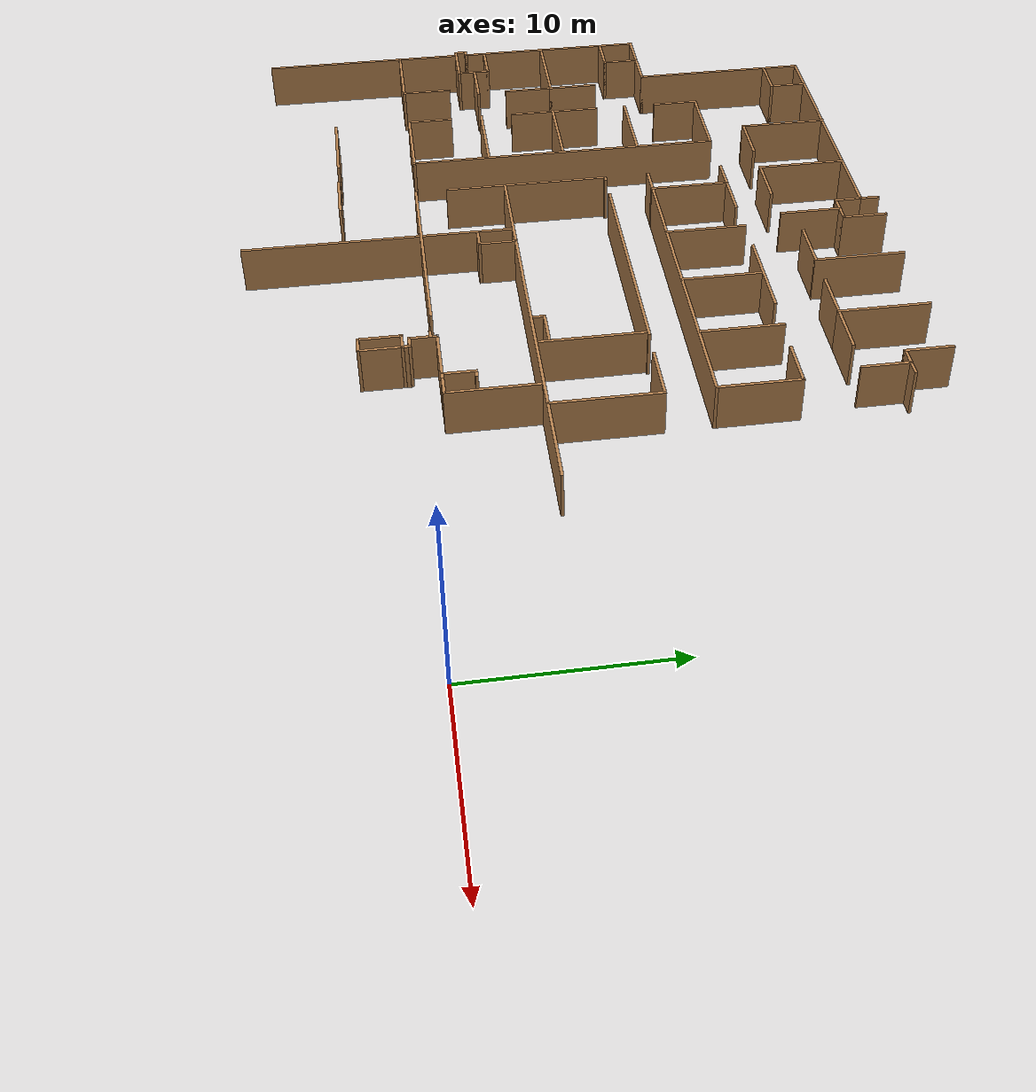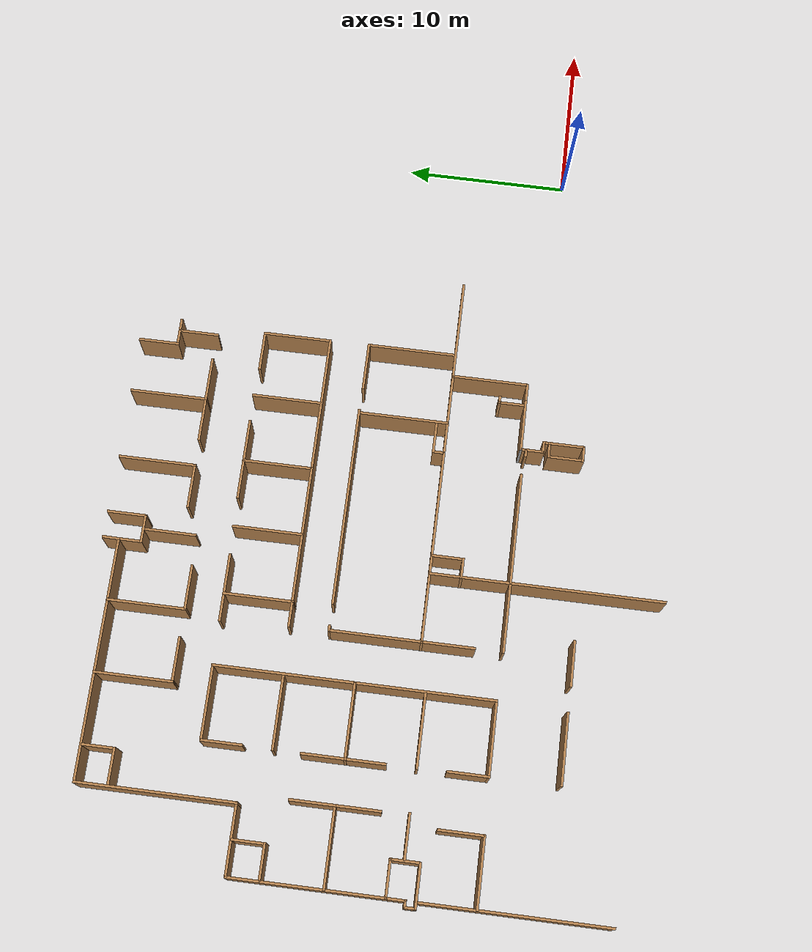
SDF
<sdf version="1.6">
 <model name="floor_plan">
  <pose>-1.19231 -1.13475 0 0 -0 0</pose>
  <link name="Wall_31">
   <collision name="Wall_31_Collision">
    <geometry><box><size>4.23243 0.15 2.5</size></box></geometry>
    <pose>0 0 1.25 0 -0 0</pose>
   </collision>
   <visual name="Wall_31_Visual">
    <pose>0 0 1.25 0 -0 0</pose>
    <geometry><box><size>4.23243 0.15 2.5</size></box></geometry>
    <material>
     <script><uri>file://media/materials/scripts/gazebo.material</uri><name>Gazebo/Wood</name></script>
     <ambient>1 1 1 1</ambient>
    </material>
   </visual>
   <pose>-42.9531 16.1808 0 0 -0 0</pose>
  </link>
  <link name="Wall_32">
   <collision name="Wall_32_Collision">
    <geometry><box><size>9.5 0.15 2.5</size></box></geometry>
    <pose>0 0 1.25 0 -0 0</pose>
   </collision>
   <visual name="Wall_32_Visual">
    <pose>0 0 1.25 0 -0 0</pose>
    <geometry><box><size>9.5 0.15 2.5</size></box></geometry>
    <material>
     <script><uri>file://media/materials/scripts/gazebo.material</uri><name>Gazebo/Wood</name></script>
     <ambient>1 1 1 1</ambient>
    </material>
   </visual>
   <pose>-40.9119 20.8558 0 0 -0 1.5708</pose>
  </link>
  <link name="Wall_34">
   <collision name="Wall_34_Collision">
    <geometry><box><size>14.5 0.15 2.5</size></box></geometry>
    <pose>0 0 1.25 0 -0 0</pose>
   </collision>
   <visual name="Wall_34_Visual">
    <pose>0 0 1.25 0 -0 0</pose>
    <geometry><box><size>14.5 0.15 2.5</size></box></geometry>
    <material>
     <script><uri>file://media/materials/scripts/gazebo.material</uri><name>Gazebo/Wood</name></script>
     <ambient>1 1 1 1</ambient>
    </material>
   </visual>
   <pose>-33.7369 25.5308 0 0 -0 0</pose>
  </link>
  <link name="Wall_35">
   <collision name="Wall_35_Collision">
    <geometry><box><size>1.09066 0.15 2.5</size></box></geometry>
    <pose>0 0 1.25 0 -0 0</pose>
   </collision>
   <visual name="Wall_35_Visual">
    <pose>0 0 1.25 0 -0 0</pose>
    <geometry><box><size>1.09066 0.15 2.5</size></box></geometry>
    <material>
     <script><uri>file://media/materials/scripts/gazebo.material</uri><name>Gazebo/Wood</name></script>
     <ambient>1 1 1 1</ambient>
    </material>
   </visual>
   <pose>-26.556 26.0011 0 0 -0 1.55812</pose>
  </link>
  <link name="Wall_37">
   <collision name="Wall_37_Collision">
    <geometry><box><size>2 0.15 2.5</size></box></geometry>
    <pose>0 0 1.25 0 -0 0</pose>
   </collision>
   <visual name="Wall_37_Visual">
    <pose>0 0 1.25 0 -0 0</pose>
    <geometry><box><size>2 0.15 2.5</size></box></geometry>
    <material>
     <script><uri>file://media/materials/scripts/gazebo.material</uri><name>Gazebo/Wood</name></script>
     <ambient>1 1 1 1</ambient>
    </material>
   </visual>
   <pose>-38.7822 24.511 0 0 0 -1.5708</pose>
  </link>
  <link name="Wall_38">
   <collision name="Wall_38_Collision">
    <geometry><box><size>2.25 0.15 2.5</size></box></geometry>
    <pose>0 0 1.25 0 -0 0</pose>
   </collision>
   <visual name="Wall_38_Visual">
    <pose>0 0 1.25 0 -0 0</pose>
    <geometry><box><size>2.25 0.15 2.5</size></box></geometry>
    <material>
     <script><uri>file://media/materials/scripts/gazebo.material</uri><name>Gazebo/Wood</name></script>
     <ambient>1 1 1 1</ambient>
    </material>
   </visual>
   <pose>-39.8322 23.586 0 0 -0 3.14159</pose>
  </link>
  <link name="Wall_40">
   <collision name="Wall_40_Collision">
    <geometry><box><size>4.75 0.15 2.5</size></box></geometry>
    <pose>0 0 1.25 0 -0 0</pose>
   </collision>
   <visual name="Wall_40_Visual">
    <pose>0 0 1.25 0 -0 0</pose>
    <geometry><box><size>4.75 0.15 2.5</size></box></geometry>
    <material>
     <script><uri>file://media/materials/scripts/gazebo.material</uri><name>Gazebo/Wood</name></script>
     <ambient>1 1 1 1</ambient>
    </material>
   </visual>
   <pose>-34.595 23.2407 0 0 0 -1.5708</pose>
  </link>
  <link name="Wall_41">
   <collision name="Wall_41_Collision">
    <geometry><box><size>2.75 0.15 2.5</size></box></geometry>
    <pose>0 0 1.25 0 -0 0</pose>
   </collision>
   <visual name="Wall_41_Visual">
    <pose>0 0 1.25 0 -0 0</pose>
    <geometry><box><size>2.75 0.15 2.5</size></box></geometry>
    <material>
     <script><uri>file://media/materials/scripts/gazebo.material</uri><name>Gazebo/Wood</name></script>
     <ambient>1 1 1 1</ambient>
    </material>
   </visual>
   <pose>-33.295 20.9407 0 0 -0 0</pose>
  </link>
  <link name="Wall_43">
   <collision name="Wall_43_Collision">
    <geometry><box><size>4.75 0.15 2.5</size></box></geometry>
    <pose>0 0 1.25 0 -0 0</pose>
   </collision>
   <visual name="Wall_43_Visual">
    <pose>0 0 1.25 0 -0 0</pose>
    <geometry><box><size>4.75 0.15 2.5</size></box></geometry>
    <material>
     <script><uri>file://media/materials/scripts/gazebo.material</uri><name>Gazebo/Wood</name></script>
     <ambient>1 1 1 1</ambient>
    </material>
   </visual>
   <pose>-30.277 23.2145 0 0 0 -1.5708</pose>
  </link>
  <link name="Wall_44">
   <collision name="Wall_44_Collision">
    <geometry><box><size>2.75 0.15 2.5</size></box></geometry>
    <pose>0 0 1.25 0 -0 0</pose>
   </collision>
   <visual name="Wall_44_Visual">
    <pose>0 0 1.25 0 -0 0</pose>
    <geometry><box><size>2.75 0.15 2.5</size></box></geometry>
    <material>
     <script><uri>file://media/materials/scripts/gazebo.material</uri><name>Gazebo/Wood</name></script>
     <ambient>1 1 1 1</ambient>
    </material>
   </visual>
   <pose>-28.977 20.9145 0 0 -0 0</pose>
  </link>
  <link name="Wall_49">
   <collision name="Wall_49_Collision">
    <geometry><box><size>1.5 0.15 2.5</size></box></geometry>
    <pose>0 0 1.25 0 -0 0</pose>
   </collision>
   <visual name="Wall_49_Visual">
    <pose>0 0 1.25 0 -0 0</pose>
    <geometry><box><size>1.5 0.15 2.5</size></box></geometry>
    <material>
     <script><uri>file://media/materials/scripts/gazebo.material</uri><name>Gazebo/Wood</name></script>
     <ambient>1 1 1 1</ambient>
    </material>
   </visual>
   <pose>-26.5619 24.8558 0 0 0 -1.5708</pose>
  </link>
  <link name="Wall_50">
   <collision name="Wall_50_Collision">
    <geometry><box><size>1.75 0.15 2.5</size></box></geometry>
    <pose>0 0 1.25 0 -0 0</pose>
   </collision>
   <visual name="Wall_50_Visual">
    <pose>0 0 1.25 0 -0 0</pose>
    <geometry><box><size>1.75 0.15 2.5</size></box></geometry>
    <material>
     <script><uri>file://media/materials/scripts/gazebo.material</uri><name>Gazebo/Wood</name></script>
     <ambient>1 1 1 1</ambient>
    </material>
   </visual>
   <pose>-25.7619 24.1808 0 0 -0 0</pose>
  </link>
  <link name="Wall_52">
   <collision name="Wall_52_Collision">
    <geometry><box><size>2.4 0.15 2.5</size></box></geometry>
    <pose>0 0 1.25 0 -0 0</pose>
   </collision>
   <visual name="Wall_52_Visual">
    <pose>0 0 1.25 0 -0 0</pose>
    <geometry><box><size>2.4 0.15 2.5</size></box></geometry>
    <material>
     <script><uri>file://media/materials/scripts/gazebo.material</uri><name>Gazebo/Wood</name></script>
     <ambient>1 1 1 1</ambient>
    </material>
   </visual>
   <pose>-24.9619 25.3058 0 0 -0 1.5708</pose>
  </link>
  <link name="Wall_527">
   <collision name="Wall_527_Collision">
    <geometry><box><size>23 0.15 2.5</size></box></geometry>
    <pose>0 0 1.25 0 -0 0</pose>
   </collision>
   <visual name="Wall_527_Visual">
    <pose>0 0 1.25 0 -0 0</pose>
    <geometry><box><size>23 0.15 2.5</size></box></geometry>
    <material>
     <script><uri>file://media/materials/scripts/gazebo.material</uri><name>Gazebo/Wood</name></script>
     <ambient>1 1 1 1</ambient>
    </material>
   </visual>
   <pose>-19.0405 6.85215 0 0 -0 3.14159</pose>
  </link>
  <link name="Wall_528">
   <collision name="Wall_528_Collision">
    <geometry><box><size>3.25 0.15 2.5</size></box></geometry>
    <pose>0 0 1.25 0 -0 0</pose>
   </collision>
   <visual name="Wall_528_Visual">
    <pose>0 0 1.25 0 -0 0</pose>
    <geometry><box><size>3.25 0.15 2.5</size></box></geometry>
    <material>
     <script><uri>file://media/materials/scripts/gazebo.material</uri><name>Gazebo/Wood</name></script>
     <ambient>1 1 1 1</ambient>
    </material>
   </visual>
   <pose>-30.4655 5.30215 0 0 0 -1.5708</pose>
  </link>
  <link name="Wall_530">
   <collision name="Wall_530_Collision">
    <geometry><box><size>11 0.15 2.5</size></box></geometry>
    <pose>0 0 1.25 0 -0 0</pose>
   </collision>
   <visual name="Wall_530_Visual">
    <pose>0 0 1.25 0 -0 0</pose>
    <geometry><box><size>11 0.15 2.5</size></box></geometry>
    <material>
     <script><uri>file://media/materials/scripts/gazebo.material</uri><name>Gazebo/Wood</name></script>
     <ambient>1 1 1 1</ambient>
    </material>
   </visual>
   <pose>-25.0205 2.04584 0 0 -0 0</pose>
  </link>
  <link name="Wall_534">
   <collision name="Wall_534_Collision">
    <geometry><box><size>0.5 0.15 2.5</size></box></geometry>
    <pose>0 0 1.25 0 -0 0</pose>
   </collision>
   <visual name="Wall_534_Visual">
    <pose>0 0 1.25 0 -0 0</pose>
    <geometry><box><size>0.5 0.15 2.5</size></box></geometry>
    <material>
     <script><uri>file://media/materials/scripts/gazebo.material</uri><name>Gazebo/Wood</name></script>
     <ambient>1 1 1 1</ambient>
    </material>
   </visual>
   <pose>-14.935 3.83197 0 0 -0 3.14159</pose>
  </link>
  <link name="Wall_535">
   <collision name="Wall_535_Collision">
    <geometry><box><size>1.75 0.15 2.5</size></box></geometry>
    <pose>0 0 1.25 0 -0 0</pose>
   </collision>
   <visual name="Wall_535_Visual">
    <pose>0 0 1.25 0 -0 0</pose>
    <geometry><box><size>1.75 0.15 2.5</size></box></geometry>
    <material>
     <script><uri>file://media/materials/scripts/gazebo.material</uri><name>Gazebo/Wood</name></script>
     <ambient>1 1 1 1</ambient>
    </material>
   </visual>
   <pose>-15.11 3.03197 0 0 0 -1.5708</pose>
  </link>
  <link name="Wall_536">
   <collision name="Wall_536_Collision">
    <geometry><box><size>1.5 0.15 2.5</size></box></geometry>
    <pose>0 0 1.25 0 -0 0</pose>
   </collision>
   <visual name="Wall_536_Visual">
    <pose>0 0 1.25 0 -0 0</pose>
    <geometry><box><size>1.5 0.15 2.5</size></box></geometry>
    <material>
     <script><uri>file://media/materials/scripts/gazebo.material</uri><name>Gazebo/Wood</name></script>
     <ambient>1 1 1 1</ambient>
    </material>
   </visual>
   <pose>-14.4351 2.23197 0 0 -0 0</pose>
  </link>
  <link name="Wall_537">
   <collision name="Wall_537_Collision">
    <geometry><box><size>4.75 0.15 2.5</size></box></geometry>
    <pose>0 0 1.25 0 -0 0</pose>
   </collision>
   <visual name="Wall_537_Visual">
    <pose>0 0 1.25 0 -0 0</pose>
    <geometry><box><size>4.75 0.15 2.5</size></box></geometry>
    <material>
     <script><uri>file://media/materials/scripts/gazebo.material</uri><name>Gazebo/Wood</name></script>
     <ambient>1 1 1 1</ambient>
    </material>
   </visual>
   <pose>-13.76 4.53197 0 0 -0 1.5708</pose>
  </link>
  <link name="Wall_54">
   <collision name="Wall_54_Collision">
    <geometry><box><size>3.25 0.15 2.5</size></box></geometry>
    <pose>0 0 1.25 0 -0 0</pose>
   </collision>
   <visual name="Wall_54_Visual">
    <pose>0 0 1.25 0 -0 0</pose>
    <geometry><box><size>3.25 0.15 2.5</size></box></geometry>
    <material>
     <script><uri>file://media/materials/scripts/gazebo.material</uri><name>Gazebo/Wood</name></script>
     <ambient>1 1 1 1</ambient>
    </material>
   </visual>
   <pose>-25.777 22.5882 0 0 0 -1.5708</pose>
  </link>
  <link name="Wall_551">
   <collision name="Wall_551_Collision">
    <geometry><box><size>0.15 0.15 2.5</size></box></geometry>
    <pose>0 0 1.25 0 -0 0</pose>
   </collision>
   <visual name="Wall_551_Visual">
    <pose>0 0 1.25 0 -0 0</pose>
    <geometry><box><size>0.15 0.15 2.5</size></box></geometry>
    <material>
     <script><uri>file://media/materials/scripts/gazebo.material</uri><name>Gazebo/Grey</name></script>
     <ambient>1 1 1 1</ambient>
    </material>
   </visual>
   <pose>-17.9601 2.23197 0 0 -0 0</pose>
  </link>
  <link name="Wall_553">
   <collision name="Wall_553_Collision">
    <geometry><box><size>3.25 0.15 2.5</size></box></geometry>
    <pose>0 0 1.25 0 -0 0</pose>
   </collision>
   <visual name="Wall_553_Visual">
    <pose>0 0 1.25 0 -0 0</pose>
    <geometry><box><size>3.25 0.15 2.5</size></box></geometry>
    <material>
     <script><uri>file://media/materials/scripts/gazebo.material</uri><name>Gazebo/Wood</name></script>
     <ambient>1 1 1 1</ambient>
    </material>
   </visual>
   <pose>-16.41 2.23197 0 0 -0 0</pose>
  </link>
  <link name="Wall_555">
   <collision name="Wall_555_Collision">
    <geometry><box><size>1.5 0.15 2.5</size></box></geometry>
    <pose>0 0 1.25 0 -0 0</pose>
   </collision>
   <visual name="Wall_555_Visual">
    <pose>0 0 1.25 0 -0 0</pose>
    <geometry><box><size>1.5 0.15 2.5</size></box></geometry>
    <material>
     <script><uri>file://media/materials/scripts/gazebo.material</uri><name>Gazebo/Wood</name></script>
     <ambient>1 1 1 1</ambient>
    </material>
   </visual>
   <pose>-17.9601 1.55697 0 0 0 -1.5708</pose>
  </link>
  <link name="Wall_556">
   <collision name="Wall_556_Collision">
    <geometry><box><size>0.75 0.15 2.5</size></box></geometry>
    <pose>0 0 1.25 0 -0 0</pose>
   </collision>
   <visual name="Wall_556_Visual">
    <pose>0 0 1.25 0 -0 0</pose>
    <geometry><box><size>0.75 0.15 2.5</size></box></geometry>
    <material>
     <script><uri>file://media/materials/scripts/gazebo.material</uri><name>Gazebo/Wood</name></script>
     <ambient>1 1 1 1</ambient>
    </material>
   </visual>
   <pose>-17.66 0.881971 0 0 -0 0</pose>
  </link>
  <link name="Wall_557">
   <collision name="Wall_557_Collision">
    <geometry><box><size>0.5 0.15 2.5</size></box></geometry>
    <pose>0 0 1.25 0 -0 0</pose>
   </collision>
   <visual name="Wall_557_Visual">
    <pose>0 0 1.25 0 -0 0</pose>
    <geometry><box><size>0.5 0.15 2.5</size></box></geometry>
    <material>
     <script><uri>file://media/materials/scripts/gazebo.material</uri><name>Gazebo/Wood</name></script>
     <ambient>1 1 1 1</ambient>
    </material>
   </visual>
   <pose>-17.3601 0.706971 0 0 0 -1.5708</pose>
  </link>
  <link name="Wall_558">
   <collision name="Wall_558_Collision">
    <geometry><box><size>1 0.15 2.5</size></box></geometry>
    <pose>0 0 1.25 0 -0 0</pose>
   </collision>
   <visual name="Wall_558_Visual">
    <pose>0 0 1.25 0 -0 0</pose>
    <geometry><box><size>1 0.15 2.5</size></box></geometry>
    <material>
     <script><uri>file://media/materials/scripts/gazebo.material</uri><name>Gazebo/Wood</name></script>
     <ambient>1 1 1 1</ambient>
    </material>
   </visual>
   <pose>-17.785 0.531971 0 0 -0 3.14159</pose>
  </link>
  <link name="Wall_559">
   <collision name="Wall_559_Collision">
    <geometry><box><size>2.25 0.15 2.5</size></box></geometry>
    <pose>0 0 1.25 0 -0 0</pose>
   </collision>
   <visual name="Wall_559_Visual">
    <pose>0 0 1.25 0 -0 0</pose>
    <geometry><box><size>2.25 0.15 2.5</size></box></geometry>
    <material>
     <script><uri>file://media/materials/scripts/gazebo.material</uri><name>Gazebo/Wood</name></script>
     <ambient>1 1 1 1</ambient>
    </material>
   </visual>
   <pose>-18.2101 -0.518029 0 0 0 -1.5708</pose>
  </link>
  <link name="Wall_56">
   <collision name="Wall_56_Collision">
    <geometry><box><size>2.75 0.15 2.5</size></box></geometry>
    <pose>0 0 1.25 0 -0 0</pose>
   </collision>
   <visual name="Wall_56_Visual">
    <pose>0 0 1.25 0 -0 0</pose>
    <geometry><box><size>2.75 0.15 2.5</size></box></geometry>
    <material>
     <script><uri>file://media/materials/scripts/gazebo.material</uri><name>Gazebo/Wood</name></script>
     <ambient>1 1 1 1</ambient>
    </material>
   </visual>
   <pose>-22.7586 21.7614 0 0 -0 0</pose>
  </link>
  <link name="Wall_562">
   <collision name="Wall_562_Collision">
    <geometry><box><size>0.5 0.15 2.5</size></box></geometry>
    <pose>0 0 1.25 0 -0 0</pose>
   </collision>
   <visual name="Wall_562_Visual">
    <pose>0 0 1.25 0 -0 0</pose>
    <geometry><box><size>0.5 0.15 2.5</size></box></geometry>
    <material>
     <script><uri>file://media/materials/scripts/gazebo.material</uri><name>Gazebo/Wood</name></script>
     <ambient>1 1 1 1</ambient>
    </material>
   </visual>
   <pose>-18.1435 1.91203 0 0 -0 3.14159</pose>
  </link>
  <link name="Wall_57">
   <collision name="Wall_57_Collision">
    <geometry><box><size>4.75 0.15 2.5</size></box></geometry>
    <pose>0 0 1.25 0 -0 0</pose>
   </collision>
   <visual name="Wall_57_Visual">
    <pose>0 0 1.25 0 -0 0</pose>
    <geometry><box><size>4.75 0.15 2.5</size></box></geometry>
    <material>
     <script><uri>file://media/materials/scripts/gazebo.material</uri><name>Gazebo/Wood</name></script>
     <ambient>1 1 1 1</ambient>
    </material>
   </visual>
   <pose>-21.4586 24.0614 0 0 -0 1.5708</pose>
  </link>
  <link name="Wall_588">
   <collision name="Wall_588_Collision">
    <geometry><box><size>2 0.15 2.5</size></box></geometry>
    <pose>0 0 1.25 0 -0 0</pose>
   </collision>
   <visual name="Wall_588_Visual">
    <pose>0 0 1.25 0 -0 0</pose>
    <geometry><box><size>2 0.15 2.5</size></box></geometry>
    <material>
     <script><uri>file://media/materials/scripts/gazebo.material</uri><name>Gazebo/Wood</name></script>
     <ambient>1 1 1 1</ambient>
    </material>
   </visual>
   <pose>-25.2339 5.89344 0 0 0 -1.5708</pose>
  </link>
  <link name="Wall_589">
   <collision name="Wall_589_Collision">
    <geometry><box><size>1.25 0.15 2.5</size></box></geometry>
    <pose>0 0 1.25 0 -0 0</pose>
   </collision>
   <visual name="Wall_589_Visual">
    <pose>0 0 1.25 0 -0 0</pose>
    <geometry><box><size>1.25 0.15 2.5</size></box></geometry>
    <material>
     <script><uri>file://media/materials/scripts/gazebo.material</uri><name>Gazebo/Wood</name></script>
     <ambient>1 1 1 1</ambient>
    </material>
   </visual>
   <pose>-25.7839 4.96844 0 0 -0 3.14159</pose>
  </link>
  <link name="Wall_59">
   <collision name="Wall_59_Collision">
    <geometry><box><size>2.75 0.15 2.5</size></box></geometry>
    <pose>0 0 1.25 0 -0 0</pose>
   </collision>
   <visual name="Wall_59_Visual">
    <pose>0 0 1.25 0 -0 0</pose>
    <geometry><box><size>2.75 0.15 2.5</size></box></geometry>
    <material>
     <script><uri>file://media/materials/scripts/gazebo.material</uri><name>Gazebo/Wood</name></script>
     <ambient>1 1 1 1</ambient>
    </material>
   </visual>
   <pose>-18.4507 21.7893 0 0 -0 0</pose>
  </link>
  <link name="Wall_590">
   <collision name="Wall_590_Collision">
    <geometry><box><size>2 0.15 2.5</size></box></geometry>
    <pose>0 0 1.25 0 -0 0</pose>
   </collision>
   <visual name="Wall_590_Visual">
    <pose>0 0 1.25 0 -0 0</pose>
    <geometry><box><size>2 0.15 2.5</size></box></geometry>
    <material>
     <script><uri>file://media/materials/scripts/gazebo.material</uri><name>Gazebo/Wood</name></script>
     <ambient>1 1 1 1</ambient>
    </material>
   </visual>
   <pose>-26.3339 5.89344 0 0 -0 1.5708</pose>
  </link>
  <link name="Wall_592">
   <collision name="Wall_592_Collision">
    <geometry><box><size>12.25 0.15 2.5</size></box></geometry>
    <pose>0 0 1.25 0 -0 0</pose>
   </collision>
   <visual name="Wall_592_Visual">
    <pose>0 0 1.25 0 -0 0</pose>
    <geometry><box><size>12.25 0.15 2.5</size></box></geometry>
    <material>
     <script><uri>file://media/materials/scripts/gazebo.material</uri><name>Gazebo/Wood</name></script>
     <ambient>1 1 1 1</ambient>
    </material>
   </visual>
   <pose>-26.3339 -1.08156 0 0 0 -1.5708</pose>
  </link>
  <link name="Wall_596">
   <collision name="Wall_596_Collision">
    <geometry><box><size>2.25 0.15 2.5</size></box></geometry>
    <pose>0 0 1.25 0 -0 0</pose>
   </collision>
   <visual name="Wall_596_Visual">
    <pose>0 0 1.25 0 -0 0</pose>
    <geometry><box><size>2.25 0.15 2.5</size></box></geometry>
    <material>
     <script><uri>file://media/materials/scripts/gazebo.material</uri><name>Gazebo/Wood</name></script>
     <ambient>1 1 1 1</ambient>
    </material>
   </visual>
   <pose>-17.3601 -0.518029 0 0 0 -1.5708</pose>
  </link>
  <link name="Wall_598">
   <collision name="Wall_598_Collision">
    <geometry><box><size>1 0.15 2.5</size></box></geometry>
    <pose>0 0 1.25 0 -0 0</pose>
   </collision>
   <visual name="Wall_598_Visual">
    <pose>0 0 1.25 0 -0 0</pose>
    <geometry><box><size>1 0.15 2.5</size></box></geometry>
    <material>
     <script><uri>file://media/materials/scripts/gazebo.material</uri><name>Gazebo/Wood</name></script>
     <ambient>1 1 1 1</ambient>
    </material>
   </visual>
   <pose>-17.785 -1.56803 0 0 -0 3.14159</pose>
  </link>
  <link name="Wall_60">
   <collision name="Wall_60_Collision">
    <geometry><box><size>4.75 0.15 2.5</size></box></geometry>
    <pose>0 0 1.25 0 -0 0</pose>
   </collision>
   <visual name="Wall_60_Visual">
    <pose>0 0 1.25 0 -0 0</pose>
    <geometry><box><size>4.75 0.15 2.5</size></box></geometry>
    <material>
     <script><uri>file://media/materials/scripts/gazebo.material</uri><name>Gazebo/Wood</name></script>
     <ambient>1 1 1 1</ambient>
    </material>
   </visual>
   <pose>-17.1507 24.0893 0 0 -0 1.5708</pose>
  </link>
  <link name="Wall_608">
   <collision name="Wall_608_Collision">
    <geometry><box><size>5.5 0.15 2.5</size></box></geometry>
    <pose>0 0 1.25 0 -0 0</pose>
   </collision>
   <visual name="Wall_608_Visual">
    <pose>0 0 1.25 0 -0 0</pose>
    <geometry><box><size>5.5 0.15 2.5</size></box></geometry>
    <material>
     <script><uri>file://media/materials/scripts/gazebo.material</uri><name>Gazebo/Wood</name></script>
     <ambient>1 1 1 1</ambient>
    </material>
   </visual>
   <pose>-30.4655 9.52715 0 0 -0 1.5708</pose>
  </link>
  <link name="Wall_610">
   <collision name="Wall_610_Collision">
    <geometry><box><size>12.25 0.15 2.5</size></box></geometry>
    <pose>0 0 1.25 0 -0 0</pose>
   </collision>
   <visual name="Wall_610_Visual">
    <pose>0 0 1.25 0 -0 0</pose>
    <geometry><box><size>12.25 0.15 2.5</size></box></geometry>
    <material>
     <script><uri>file://media/materials/scripts/gazebo.material</uri><name>Gazebo/Wood</name></script>
     <ambient>1 1 1 1</ambient>
    </material>
   </visual>
   <pose>-22.7656 12.3211 0 0 -0 0</pose>
  </link>
  <link name="Wall_612">
   <collision name="Wall_612_Collision">
    <geometry><box><size>5.5 0.15 2.5</size></box></geometry>
    <pose>0 0 1.25 0 -0 0</pose>
   </collision>
   <visual name="Wall_612_Visual">
    <pose>0 0 1.25 0 -0 0</pose>
    <geometry><box><size>5.5 0.15 2.5</size></box></geometry>
    <material>
     <script><uri>file://media/materials/scripts/gazebo.material</uri><name>Gazebo/Wood</name></script>
     <ambient>1 1 1 1</ambient>
    </material>
   </visual>
   <pose>-16.8474 9.55881 0 0 -0 1.5708</pose>
  </link>
  <link name="Wall_615">
   <collision name="Wall_615_Collision">
    <geometry><box><size>0.75 0.15 2.5</size></box></geometry>
    <pose>0 0 1.25 0 -0 0</pose>
   </collision>
   <visual name="Wall_615_Visual">
    <pose>0 0 1.25 0 -0 0</pose>
    <geometry><box><size>0.75 0.15 2.5</size></box></geometry>
    <material>
     <script><uri>file://media/materials/scripts/gazebo.material</uri><name>Gazebo/Wood</name></script>
     <ambient>1 1 1 1</ambient>
    </material>
   </visual>
   <pose>-18.7747 7.21079 0 0 -0 1.5708</pose>
  </link>
  <link name="Wall_616">
   <collision name="Wall_616_Collision">
    <geometry><box><size>2 0.15 2.5</size></box></geometry>
    <pose>0 0 1.25 0 -0 0</pose>
   </collision>
   <visual name="Wall_616_Visual">
    <pose>0 0 1.25 0 -0 0</pose>
    <geometry><box><size>2 0.15 2.5</size></box></geometry>
    <material>
     <script><uri>file://media/materials/scripts/gazebo.material</uri><name>Gazebo/Wood</name></script>
     <ambient>1 1 1 1</ambient>
    </material>
   </visual>
   <pose>-17.8497 7.51079 0 0 -0 0</pose>
  </link>
  <link name="Wall_618">
   <collision name="Wall_618_Collision">
    <geometry><box><size>3 0.15 2.5</size></box></geometry>
    <pose>0 0 1.25 0 -0 0</pose>
   </collision>
   <visual name="Wall_618_Visual">
    <pose>0 0 1.25 0 -0 0</pose>
    <geometry><box><size>3 0.15 2.5</size></box></geometry>
    <material>
     <script><uri>file://media/materials/scripts/gazebo.material</uri><name>Gazebo/Wood</name></script>
     <ambient>1 1 1 1</ambient>
    </material>
   </visual>
   <pose>-13.7838 12.2728 0 0 -0 0</pose>
  </link>
  <link name="Wall_619">
   <collision name="Wall_619_Collision">
    <geometry><box><size>5.5 0.15 2.5</size></box></geometry>
    <pose>0 0 1.25 0 -0 0</pose>
   </collision>
   <visual name="Wall_619_Visual">
    <pose>0 0 1.25 0 -0 0</pose>
    <geometry><box><size>5.5 0.15 2.5</size></box></geometry>
    <material>
     <script><uri>file://media/materials/scripts/gazebo.material</uri><name>Gazebo/Wood</name></script>
     <ambient>1 1 1 1</ambient>
    </material>
   </visual>
   <pose>-12.3588 9.59782 0 0 0 -1.5708</pose>
  </link>
  <link name="Wall_62">
   <collision name="Wall_62_Collision">
    <geometry><box><size>2.75 0.15 2.5</size></box></geometry>
    <pose>0 0 1.25 0 -0 0</pose>
   </collision>
   <visual name="Wall_62_Visual">
    <pose>0 0 1.25 0 -0 0</pose>
    <geometry><box><size>2.75 0.15 2.5</size></box></geometry>
    <material>
     <script><uri>file://media/materials/scripts/gazebo.material</uri><name>Gazebo/Wood</name></script>
     <ambient>1 1 1 1</ambient>
    </material>
   </visual>
   <pose>-15.8507 21.7893 0 0 -0 0</pose>
  </link>
  <link name="Wall_625">
   <collision name="Wall_625_Collision">
    <geometry><box><size>0.4 0.15 2.5</size></box></geometry>
    <pose>0 0 1.25 0 -0 0</pose>
   </collision>
   <visual name="Wall_625_Visual">
    <pose>0 0 1.25 0 -0 0</pose>
    <geometry><box><size>0.4 0.15 2.5</size></box></geometry>
    <material>
     <script><uri>file://media/materials/scripts/gazebo.material</uri><name>Gazebo/Wood</name></script>
     <ambient>1 1 1 1</ambient>
    </material>
   </visual>
   <pose>-30.3369 12.3256 0 0 -0 3.14159</pose>
  </link>
  <link name="Wall_627">
   <collision name="Wall_627_Collision">
    <geometry><box><size>5 0.15 2.5</size></box></geometry>
    <pose>0 0 1.25 0 -0 0</pose>
   </collision>
   <visual name="Wall_627_Visual">
    <pose>0 0 1.25 0 -0 0</pose>
    <geometry><box><size>5 0.15 2.5</size></box></geometry>
    <material>
     <script><uri>file://media/materials/scripts/gazebo.material</uri><name>Gazebo/Wood</name></script>
     <ambient>1 1 1 1</ambient>
    </material>
   </visual>
   <pose>-20.6891 18.8708 0 0 -0 0</pose>
  </link>
  <link name="Wall_629">
   <collision name="Wall_629_Collision">
    <geometry><box><size>2.5 0.15 2.5</size></box></geometry>
    <pose>0 0 1.25 0 -0 0</pose>
   </collision>
   <visual name="Wall_629_Visual">
    <pose>0 0 1.25 0 -0 0</pose>
    <geometry><box><size>2.5 0.15 2.5</size></box></geometry>
    <material>
     <script><uri>file://media/materials/scripts/gazebo.material</uri><name>Gazebo/Wood</name></script>
     <ambient>1 1 1 1</ambient>
    </material>
   </visual>
   <pose>-13.5553 18.8009 0 0 -0 0</pose>
  </link>
  <link name="Wall_630">
   <collision name="Wall_630_Collision">
    <geometry><box><size>4.25 0.15 2.5</size></box></geometry>
    <pose>0 0 1.25 0 -0 0</pose>
   </collision>
   <visual name="Wall_630_Visual">
    <pose>0 0 1.25 0 -0 0</pose>
    <geometry><box><size>4.25 0.15 2.5</size></box></geometry>
    <material>
     <script><uri>file://media/materials/scripts/gazebo.material</uri><name>Gazebo/Wood</name></script>
     <ambient>1 1 1 1</ambient>
    </material>
   </visual>
   <pose>-12.3803 16.7509 0 0 0 -1.5708</pose>
  </link>
  <link name="Wall_631">
   <collision name="Wall_631_Collision">
    <geometry><box><size>18.25 0.15 2.5</size></box></geometry>
    <pose>0 0 1.25 0 -0 0</pose>
   </collision>
   <visual name="Wall_631_Visual">
    <pose>0 0 1.25 0 -0 0</pose>
    <geometry><box><size>18.25 0.15 2.5</size></box></geometry>
    <material>
     <script><uri>file://media/materials/scripts/gazebo.material</uri><name>Gazebo/Wood</name></script>
     <ambient>1 1 1 1</ambient>
    </material>
   </visual>
   <pose>-21.4303 14.7009 0 0 -0 3.14159</pose>
  </link>
  <link name="Wall_633">
   <collision name="Wall_633_Collision">
    <geometry><box><size>4.25 0.15 2.5</size></box></geometry>
    <pose>0 0 1.25 0 -0 0</pose>
   </collision>
   <visual name="Wall_633_Visual">
    <pose>0 0 1.25 0 -0 0</pose>
    <geometry><box><size>4.25 0.15 2.5</size></box></geometry>
    <material>
     <script><uri>file://media/materials/scripts/gazebo.material</uri><name>Gazebo/Wood</name></script>
     <ambient>1 1 1 1</ambient>
    </material>
   </visual>
   <pose>-29.0526 16.7289 0 0 -0 1.5708</pose>
  </link>
  <link name="Wall_634">
   <collision name="Wall_634_Collision">
    <geometry><box><size>1.75 0.15 2.5</size></box></geometry>
    <pose>0 0 1.25 0 -0 0</pose>
   </collision>
   <visual name="Wall_634_Visual">
    <pose>0 0 1.25 0 -0 0</pose>
    <geometry><box><size>1.75 0.15 2.5</size></box></geometry>
    <material>
     <script><uri>file://media/materials/scripts/gazebo.material</uri><name>Gazebo/Wood</name></script>
     <ambient>1 1 1 1</ambient>
    </material>
   </visual>
   <pose>-29.8526 18.7789 0 0 -0 3.14159</pose>
  </link>
  <link name="Wall_636">
   <collision name="Wall_636_Collision">
    <geometry><box><size>2.5 0.15 2.5</size></box></geometry>
    <pose>0 0 1.25 0 -0 0</pose>
   </collision>
   <visual name="Wall_636_Visual">
    <pose>0 0 1.25 0 -0 0</pose>
    <geometry><box><size>2.5 0.15 2.5</size></box></geometry>
    <material>
     <script><uri>file://media/materials/scripts/gazebo.material</uri><name>Gazebo/Wood</name></script>
     <ambient>1 1 1 1</ambient>
    </material>
   </visual>
   <pose>-27.8776 18.7789 0 0 -0 0</pose>
  </link>
  <link name="Wall_638">
   <collision name="Wall_638_Collision">
    <geometry><box><size>4.25 0.15 2.5</size></box></geometry>
    <pose>0 0 1.25 0 -0 0</pose>
   </collision>
   <visual name="Wall_638_Visual">
    <pose>0 0 1.25 0 -0 0</pose>
    <geometry><box><size>4.25 0.15 2.5</size></box></geometry>
    <material>
     <script><uri>file://media/materials/scripts/gazebo.material</uri><name>Gazebo/Wood</name></script>
     <ambient>1 1 1 1</ambient>
    </material>
   </visual>
   <pose>-24.9306 16.7987 0 0 -0 1.5708</pose>
  </link>
  <link name="Wall_64">
   <collision name="Wall_64_Collision">
    <geometry><box><size>2.5 0.15 2.5</size></box></geometry>
    <pose>0 0 1.25 0 -0 0</pose>
   </collision>
   <visual name="Wall_64_Visual">
    <pose>0 0 1.25 0 -0 0</pose>
    <geometry><box><size>2.5 0.15 2.5</size></box></geometry>
    <material>
     <script><uri>file://media/materials/scripts/gazebo.material</uri><name>Gazebo/Wood</name></script>
     <ambient>1 1 1 1</ambient>
    </material>
   </visual>
   <pose>-13.7543 25.2869 0 0 0 -1.5708</pose>
  </link>
  <link name="Wall_641">
   <collision name="Wall_641_Collision">
    <geometry><box><size>4.25 0.15 2.5</size></box></geometry>
    <pose>0 0 1.25 0 -0 0</pose>
   </collision>
   <visual name="Wall_641_Visual">
    <pose>0 0 1.25 0 -0 0</pose>
    <geometry><box><size>4.25 0.15 2.5</size></box></geometry>
    <material>
     <script><uri>file://media/materials/scripts/gazebo.material</uri><name>Gazebo/Wood</name></script>
     <ambient>1 1 1 1</ambient>
    </material>
   </visual>
   <pose>-20.7733 16.8086 0 0 -0 1.5708</pose>
  </link>
  <link name="Wall_643">
   <collision name="Wall_643_Collision">
    <geometry><box><size>4.25 0.15 2.5</size></box></geometry>
    <pose>0 0 1.25 0 -0 0</pose>
   </collision>
   <visual name="Wall_643_Visual">
    <pose>0 0 1.25 0 -0 0</pose>
    <geometry><box><size>4.25 0.15 2.5</size></box></geometry>
    <material>
     <script><uri>file://media/materials/scripts/gazebo.material</uri><name>Gazebo/Wood</name></script>
     <ambient>1 1 1 1</ambient>
    </material>
   </visual>
   <pose>-16.5325 16.8497 0 0 0 -1.5708</pose>
  </link>
  <link name="Wall_645">
   <collision name="Wall_645_Collision">
    <geometry><box><size>2.5 0.15 2.5</size></box></geometry>
    <pose>0 0 1.25 0 -0 0</pose>
   </collision>
   <visual name="Wall_645_Visual">
    <pose>0 0 1.25 0 -0 0</pose>
    <geometry><box><size>2.5 0.15 2.5</size></box></geometry>
    <material>
     <script><uri>file://media/materials/scripts/gazebo.material</uri><name>Gazebo/Wood</name></script>
     <ambient>1 1 1 1</ambient>
    </material>
   </visual>
   <pose>-37.6858 17.5761 0 0 -0 1.5708</pose>
  </link>
  <link name="Wall_646">
   <collision name="Wall_646_Collision">
    <geometry><box><size>4.5 0.15 2.5</size></box></geometry>
    <pose>0 0 1.25 0 -0 0</pose>
   </collision>
   <visual name="Wall_646_Visual">
    <pose>0 0 1.25 0 -0 0</pose>
    <geometry><box><size>4.5 0.15 2.5</size></box></geometry>
    <material>
     <script><uri>file://media/materials/scripts/gazebo.material</uri><name>Gazebo/Wood</name></script>
     <ambient>1 1 1 1</ambient>
    </material>
   </visual>
   <pose>-35.5108 18.7511 0 0 -0 0</pose>
  </link>
  <link name="Wall_647">
   <collision name="Wall_647_Collision">
    <geometry><box><size>16.75 0.15 2.5</size></box></geometry>
    <pose>0 0 1.25 0 -0 0</pose>
   </collision>
   <visual name="Wall_647_Visual">
    <pose>0 0 1.25 0 -0 0</pose>
    <geometry><box><size>16.75 0.15 2.5</size></box></geometry>
    <material>
     <script><uri>file://media/materials/scripts/gazebo.material</uri><name>Gazebo/Wood</name></script>
     <ambient>1 1 1 1</ambient>
    </material>
   </visual>
   <pose>-33.3358 10.4511 0 0 0 -1.5708</pose>
  </link>
  <link name="Wall_648">
   <collision name="Wall_648_Collision">
    <geometry><box><size>4.5 0.15 2.5</size></box></geometry>
    <pose>0 0 1.25 0 -0 0</pose>
   </collision>
   <visual name="Wall_648_Visual">
    <pose>0 0 1.25 0 -0 0</pose>
    <geometry><box><size>4.5 0.15 2.5</size></box></geometry>
    <material>
     <script><uri>file://media/materials/scripts/gazebo.material</uri><name>Gazebo/Wood</name></script>
     <ambient>1 1 1 1</ambient>
    </material>
   </visual>
   <pose>-35.5108 2.15114 0 0 -0 3.14159</pose>
  </link>
  <link name="Wall_649">
   <collision name="Wall_649_Collision">
    <geometry><box><size>2.5 0.15 2.5</size></box></geometry>
    <pose>0 0 1.25 0 -0 0</pose>
   </collision>
   <visual name="Wall_649_Visual">
    <pose>0 0 1.25 0 -0 0</pose>
    <geometry><box><size>2.5 0.15 2.5</size></box></geometry>
    <material>
     <script><uri>file://media/materials/scripts/gazebo.material</uri><name>Gazebo/Wood</name></script>
     <ambient>1 1 1 1</ambient>
    </material>
   </visual>
   <pose>-37.6858 3.32613 0 0 -0 1.5708</pose>
  </link>
  <link name="Wall_65">
   <collision name="Wall_65_Collision">
    <geometry><box><size>1.75 0.15 2.5</size></box></geometry>
    <pose>0 0 1.25 0 -0 0</pose>
   </collision>
   <visual name="Wall_65_Visual">
    <pose>0 0 1.25 0 -0 0</pose>
    <geometry><box><size>1.75 0.15 2.5</size></box></geometry>
    <material>
     <script><uri>file://media/materials/scripts/gazebo.material</uri><name>Gazebo/Wood</name></script>
     <ambient>1 1 1 1</ambient>
    </material>
   </visual>
   <pose>-12.9543 24.1119 0 0 -0 0</pose>
  </link>
  <link name="Wall_651">
   <collision name="Wall_651_Collision">
    <geometry><box><size>5 0.15 2.5</size></box></geometry>
    <pose>0 0 1.25 0 -0 0</pose>
   </collision>
   <visual name="Wall_651_Visual">
    <pose>0 0 1.25 0 -0 0</pose>
    <geometry><box><size>5 0.15 2.5</size></box></geometry>
    <material>
     <script><uri>file://media/materials/scripts/gazebo.material</uri><name>Gazebo/Wood</name></script>
     <ambient>1 1 1 1</ambient>
    </material>
   </visual>
   <pose>-37.7222 10.5078 0 0 0 -1.5708</pose>
  </link>
  <link name="Wall_654">
   <collision name="Wall_654_Collision">
    <geometry><box><size>4.5 0.15 2.5</size></box></geometry>
    <pose>0 0 1.25 0 -0 0</pose>
   </collision>
   <visual name="Wall_654_Visual">
    <pose>0 0 1.25 0 -0 0</pose>
    <geometry><box><size>4.5 0.15 2.5</size></box></geometry>
    <material>
     <script><uri>file://media/materials/scripts/gazebo.material</uri><name>Gazebo/Wood</name></script>
     <ambient>1 1 1 1</ambient>
    </material>
   </visual>
   <pose>-35.5172 14.5948 0 0 -0 3.14159</pose>
  </link>
  <link name="Wall_656">
   <collision name="Wall_656_Collision">
    <geometry><box><size>4.5 0.15 2.5</size></box></geometry>
    <pose>0 0 1.25 0 -0 0</pose>
   </collision>
   <visual name="Wall_656_Visual">
    <pose>0 0 1.25 0 -0 0</pose>
    <geometry><box><size>4.5 0.15 2.5</size></box></geometry>
    <material>
     <script><uri>file://media/materials/scripts/gazebo.material</uri><name>Gazebo/Wood</name></script>
     <ambient>1 1 1 1</ambient>
    </material>
   </visual>
   <pose>-35.5573 10.4169 0 0 -0 3.14159</pose>
  </link>
  <link name="Wall_658">
   <collision name="Wall_658_Collision">
    <geometry><box><size>4.5 0.15 2.5</size></box></geometry>
    <pose>0 0 1.25 0 -0 0</pose>
   </collision>
   <visual name="Wall_658_Visual">
    <pose>0 0 1.25 0 -0 0</pose>
    <geometry><box><size>4.5 0.15 2.5</size></box></geometry>
    <material>
     <script><uri>file://media/materials/scripts/gazebo.material</uri><name>Gazebo/Wood</name></script>
     <ambient>1 1 1 1</ambient>
    </material>
   </visual>
   <pose>-35.5372 6.27917 0 0 -0 3.14159</pose>
  </link>
  <link name="Wall_661">
   <collision name="Wall_661_Collision">
    <geometry><box><size>2 0.15 2.5</size></box></geometry>
    <pose>0 0 1.25 0 -0 0</pose>
   </collision>
   <visual name="Wall_661_Visual">
    <pose>0 0 1.25 0 -0 0</pose>
    <geometry><box><size>2 0.15 2.5</size></box></geometry>
    <material>
     <script><uri>file://media/materials/scripts/gazebo.material</uri><name>Gazebo/Wood</name></script>
     <ambient>1 1 1 1</ambient>
    </material>
   </visual>
   <pose>-42.9388 15.1923 0 0 0 -1.5708</pose>
  </link>
  <link name="Wall_662">
   <collision name="Wall_662_Collision">
    <geometry><box><size>2.15 0.15 2.5</size></box></geometry>
    <pose>0 0 1.25 0 -0 0</pose>
   </collision>
   <visual name="Wall_662_Visual">
    <pose>0 0 1.25 0 -0 0</pose>
    <geometry><box><size>2.15 0.15 2.5</size></box></geometry>
    <material>
     <script><uri>file://media/materials/scripts/gazebo.material</uri><name>Gazebo/Wood</name></script>
     <ambient>1 1 1 1</ambient>
    </material>
   </visual>
   <pose>-43.9388 14.2673 0 0 -0 3.14159</pose>
  </link>
  <link name="Wall_664">
   <collision name="Wall_664_Collision">
    <geometry><box><size>4.75 0.15 2.5</size></box></geometry>
    <pose>0 0 1.25 0 -0 0</pose>
   </collision>
   <visual name="Wall_664_Visual">
    <pose>0 0 1.25 0 -0 0</pose>
    <geometry><box><size>4.75 0.15 2.5</size></box></geometry>
    <material>
     <script><uri>file://media/materials/scripts/gazebo.material</uri><name>Gazebo/Wood</name></script>
     <ambient>1 1 1 1</ambient>
    </material>
   </visual>
   <pose>-42.661 10.6354 0 0 -0 0</pose>
  </link>
  <link name="Wall_665">
   <collision name="Wall_665_Collision">
    <geometry><box><size>2.75 0.15 2.5</size></box></geometry>
    <pose>0 0 1.25 0 -0 0</pose>
   </collision>
   <visual name="Wall_665_Visual">
    <pose>0 0 1.25 0 -0 0</pose>
    <geometry><box><size>2.75 0.15 2.5</size></box></geometry>
    <material>
     <script><uri>file://media/materials/scripts/gazebo.material</uri><name>Gazebo/Wood</name></script>
     <ambient>1 1 1 1</ambient>
    </material>
   </visual>
   <pose>-40.361 11.9354 0 0 -0 1.5708</pose>
  </link>
  <link name="Wall_667">
   <collision name="Wall_667_Collision">
    <geometry><box><size>2.75 0.15 2.5</size></box></geometry>
    <pose>0 0 1.25 0 -0 0</pose>
   </collision>
   <visual name="Wall_667_Visual">
    <pose>0 0 1.25 0 -0 0</pose>
    <geometry><box><size>2.75 0.15 2.5</size></box></geometry>
    <material>
     <script><uri>file://media/materials/scripts/gazebo.material</uri><name>Gazebo/Wood</name></script>
     <ambient>1 1 1 1</ambient>
    </material>
   </visual>
   <pose>-40.361 9.33537 0 0 0 -1.5708</pose>
  </link>
  <link name="Wall_669">
   <collision name="Wall_669_Collision">
    <geometry><box><size>2.25 0.15 2.5</size></box></geometry>
    <pose>0 0 1.25 0 -0 0</pose>
   </collision>
   <visual name="Wall_669_Visual">
    <pose>0 0 1.25 0 -0 0</pose>
    <geometry><box><size>2.25 0.15 2.5</size></box></geometry>
    <material>
     <script><uri>file://media/materials/scripts/gazebo.material</uri><name>Gazebo/Wood</name></script>
     <ambient>1 1 1 1</ambient>
    </material>
   </visual>
   <pose>-43.9268 7.16123 0 0 -0 0</pose>
  </link>
  <link name="Wall_672">
   <collision name="Wall_672_Collision">
    <geometry><box><size>1.75 0.15 2.5</size></box></geometry>
    <pose>0 0 1.25 0 -0 0</pose>
   </collision>
   <visual name="Wall_672_Visual">
    <pose>0 0 1.25 0 -0 0</pose>
    <geometry><box><size>1.75 0.15 2.5</size></box></geometry>
    <material>
     <script><uri>file://media/materials/scripts/gazebo.material</uri><name>Gazebo/Wood</name></script>
     <ambient>1 1 1 1</ambient>
    </material>
   </visual>
   <pose>-42.8768 6.36123 0 0 0 -1.5708</pose>
  </link>
  <link name="Wall_675">
   <collision name="Wall_675_Collision">
    <geometry><box><size>9.17 0.15 2.5</size></box></geometry>
    <pose>0 0 1.25 0 -0 0</pose>
   </collision>
   <visual name="Wall_675_Visual">
    <pose>0 0 1.25 0 -0 0</pose>
    <geometry><box><size>9.17 0.15 2.5</size></box></geometry>
    <material>
     <script><uri>file://media/materials/scripts/gazebo.material</uri><name>Gazebo/Wood</name></script>
     <ambient>1 1 1 1</ambient>
    </material>
   </visual>
   <pose>-44.9944 11.6708 0 0 0 -1.5708</pose>
  </link>
  <link name="Wall_68">
   <collision name="Wall_68_Collision">
    <geometry><box><size>2.5 0.15 2.5</size></box></geometry>
    <pose>0 0 1.25 0 -0 0</pose>
   </collision>
   <visual name="Wall_68_Visual">
    <pose>0 0 1.25 0 -0 0</pose>
    <geometry><box><size>2.5 0.15 2.5</size></box></geometry>
    <material>
     <script><uri>file://media/materials/scripts/gazebo.material</uri><name>Gazebo/Wood</name></script>
     <ambient>1 1 1 1</ambient>
    </material>
   </visual>
   <pose>-12.8722 22.9284 0 0 0 -1.5708</pose>
  </link>
  <link name="Wall_681">
   <collision name="Wall_681_Collision">
    <geometry><box><size>1.25 0.15 2.5</size></box></geometry>
    <pose>0 0 1.25 0 -0 0</pose>
   </collision>
   <visual name="Wall_681_Visual">
    <pose>0 0 1.25 0 -0 0</pose>
    <geometry><box><size>1.25 0.15 2.5</size></box></geometry>
    <material>
     <script><uri>file://media/materials/scripts/gazebo.material</uri><name>Gazebo/Wood</name></script>
     <ambient>1 1 1 1</ambient>
    </material>
   </visual>
   <pose>-44.9944 6.61081 0 0 0 -1.5708</pose>
  </link>
  <link name="Wall_682">
   <collision name="Wall_682_Collision">
    <geometry><box><size>0.5 0.15 2.5</size></box></geometry>
    <pose>0 0 1.25 0 -0 0</pose>
   </collision>
   <visual name="Wall_682_Visual">
    <pose>0 0 1.25 0 -0 0</pose>
    <geometry><box><size>0.5 0.15 2.5</size></box></geometry>
    <material>
     <script><uri>file://media/materials/scripts/gazebo.material</uri><name>Gazebo/Wood</name></script>
     <ambient>1 1 1 1</ambient>
    </material>
   </visual>
   <pose>-45.1694 6.06081 0 0 -0 3.14159</pose>
  </link>
  <link name="Wall_683">
   <collision name="Wall_683_Collision">
    <geometry><box><size>0.75 0.15 2.5</size></box></geometry>
    <pose>0 0 1.25 0 -0 0</pose>
   </collision>
   <visual name="Wall_683_Visual">
    <pose>0 0 1.25 0 -0 0</pose>
    <geometry><box><size>0.75 0.15 2.5</size></box></geometry>
    <material>
     <script><uri>file://media/materials/scripts/gazebo.material</uri><name>Gazebo/Wood</name></script>
     <ambient>1 1 1 1</ambient>
    </material>
   </visual>
   <pose>-45.3444 5.76081 0 0 0 -1.5708</pose>
  </link>
  <link name="Wall_686">
   <collision name="Wall_686_Collision">
    <geometry><box><size>2.618 0.15 2.5</size></box></geometry>
    <pose>0 0 1.25 0 -0 0</pose>
   </collision>
   <visual name="Wall_686_Visual">
    <pose>0 0 1.25 0 -0 0</pose>
    <geometry><box><size>2.618 0.15 2.5</size></box></geometry>
    <material>
     <script><uri>file://media/materials/scripts/gazebo.material</uri><name>Gazebo/Wood</name></script>
     <ambient>1 1 1 1</ambient>
    </material>
   </visual>
   <pose>-44.1104 5.46081 0 0 -0 0</pose>
  </link>
  <link name="Wall_688">
   <collision name="Wall_688_Collision">
    <geometry><box><size>2.65 0.15 2.5</size></box></geometry>
    <pose>0 0 1.25 0 -0 0</pose>
   </collision>
   <visual name="Wall_688_Visual">
    <pose>0 0 1.25 0 -0 0</pose>
    <geometry><box><size>2.65 0.15 2.5</size></box></geometry>
    <material>
     <script><uri>file://media/materials/scripts/gazebo.material</uri><name>Gazebo/Wood</name></script>
     <ambient>1 1 1 1</ambient>
    </material>
   </visual>
   <pose>-41.5337 6.37249 0 0 -0 0</pose>
  </link>
  <link name="Wall_693">
   <collision name="Wall_693_Collision">
    <geometry><box><size>11.15 0.15 2.5</size></box></geometry>
    <pose>0 0 1.25 0 -0 0</pose>
   </collision>
   <visual name="Wall_693_Visual">
    <pose>0 0 1.25 0 -0 0</pose>
    <geometry><box><size>11.15 0.15 2.5</size></box></geometry>
    <material>
     <script><uri>file://media/materials/scripts/gazebo.material</uri><name>Gazebo/Wood</name></script>
     <ambient>1 1 1 1</ambient>
    </material>
   </visual>
   <pose>-45 -0.078604 0 0 -0 1.5708</pose>
  </link>
  <link name="Wall_705">
   <collision name="Wall_705_Collision">
    <geometry><box><size>2.75 0.15 2.5</size></box></geometry>
    <pose>0 0 1.25 0 -0 0</pose>
   </collision>
   <visual name="Wall_705_Visual">
    <pose>0 0 1.25 0 -0 0</pose>
    <geometry><box><size>2.75 0.15 2.5</size></box></geometry>
    <material>
     <script><uri>file://media/materials/scripts/gazebo.material</uri><name>Gazebo/Wood</name></script>
     <ambient>1 1 1 1</ambient>
    </material>
   </visual>
   <pose>-40.9558 3.35605 0 0 0 -1.5708</pose>
  </link>
  <link name="Wall_706">
   <collision name="Wall_706_Collision">
    <geometry><box><size>4.15 0.15 2.5</size></box></geometry>
    <pose>0 0 1.25 0 -0 0</pose>
   </collision>
   <visual name="Wall_706_Visual">
    <pose>0 0 1.25 0 -0 0</pose>
    <geometry><box><size>4.15 0.15 2.5</size></box></geometry>
    <material>
     <script><uri>file://media/materials/scripts/gazebo.material</uri><name>Gazebo/Wood</name></script>
     <ambient>1 1 1 1</ambient>
    </material>
   </visual>
   <pose>-42.9558 2.05605 0 0 -0 3.14159</pose>
  </link>
  <link name="Wall_719">
   <collision name="Wall_719_Collision">
    <geometry><box><size>4.25 0.15 2.5</size></box></geometry>
    <pose>0 0 1.25 0 -0 0</pose>
   </collision>
   <visual name="Wall_719_Visual">
    <pose>0 0 1.25 0 -0 0</pose>
    <geometry><box><size>4.25 0.15 2.5</size></box></geometry>
    <material>
     <script><uri>file://media/materials/scripts/gazebo.material</uri><name>Gazebo/Wood</name></script>
     <ambient>1 1 1 1</ambient>
    </material>
   </visual>
   <pose>-35.5852 -1.99944 0 0 -0 0</pose>
  </link>
  <link name="Wall_740">
   <collision name="Wall_740_Collision">
    <geometry><box><size>2.75 0.15 2.5</size></box></geometry>
    <pose>0 0 1.25 0 -0 0</pose>
   </collision>
   <visual name="Wall_740_Visual">
    <pose>0 0 1.25 0 -0 0</pose>
    <geometry><box><size>2.75 0.15 2.5</size></box></geometry>
    <material>
     <script><uri>file://media/materials/scripts/gazebo.material</uri><name>Gazebo/Wood</name></script>
     <ambient>1 1 1 1</ambient>
    </material>
   </visual>
   <pose>-30.6266 -2.03089 0 0 -0 3.14159</pose>
  </link>
  <static>1</static>
 </model>
</sdf>
